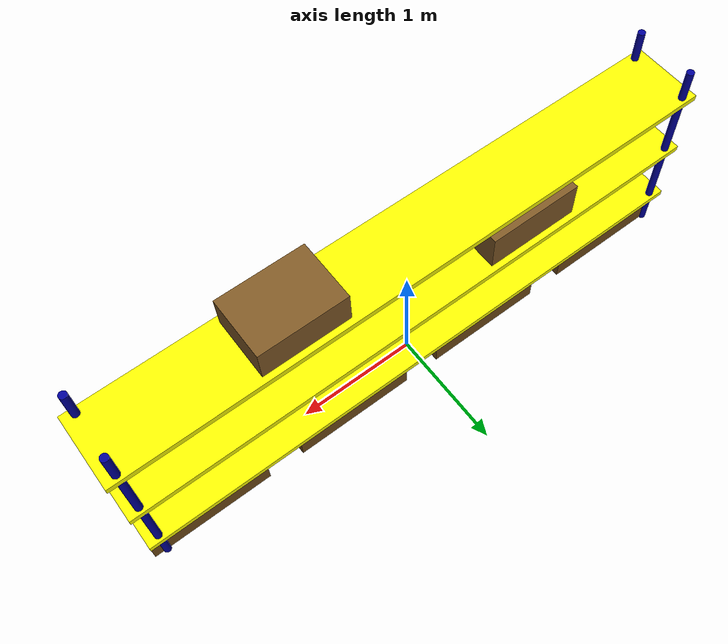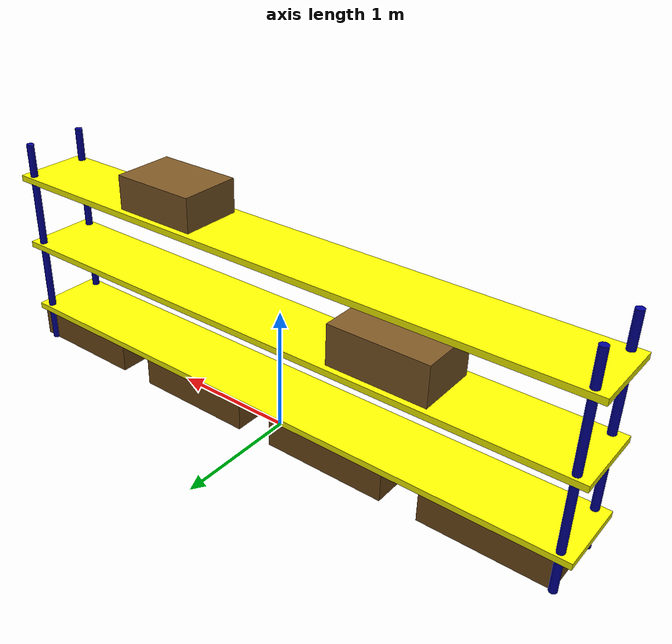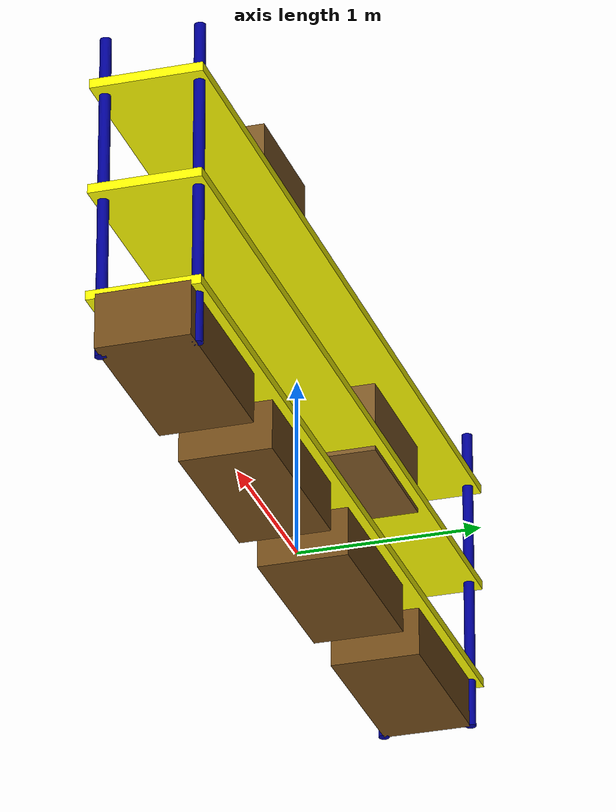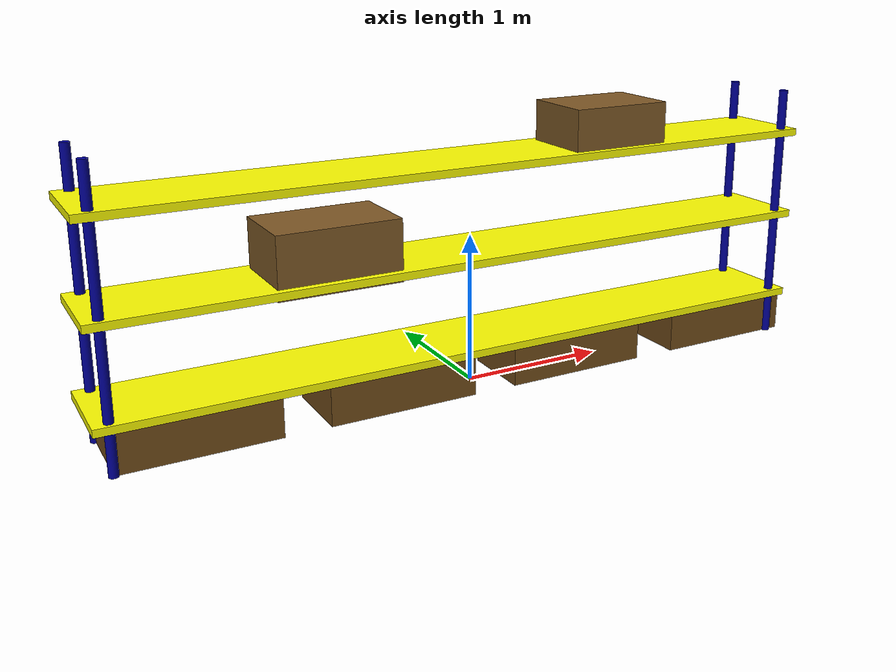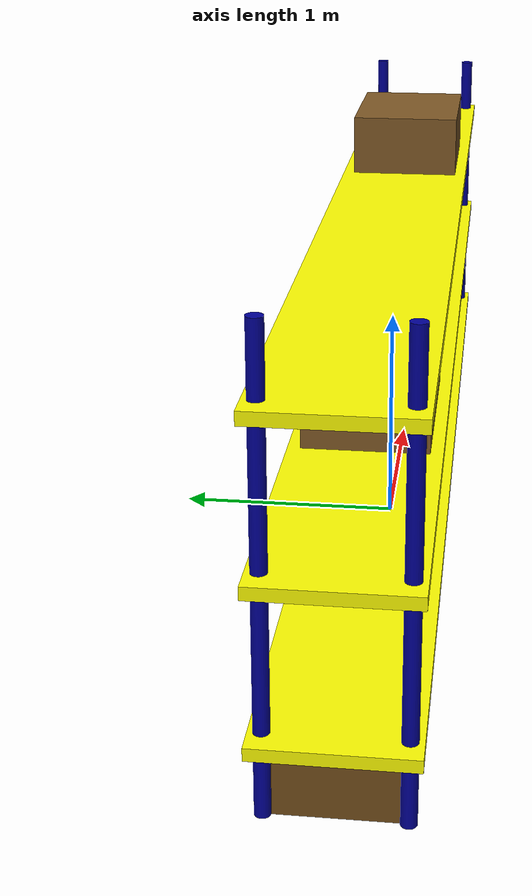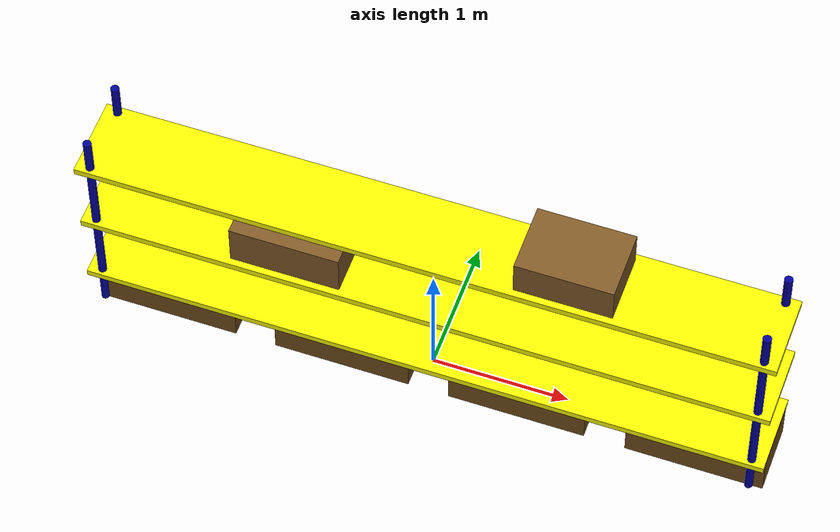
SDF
<?xml version="1.0" ?>
<sdf version="1.6">
  <model name="shelf_simple">
    <static>true</static>

    <!-- Collision box (keeps lidar and navigation aware of shelf boundaries) -->
    <link name="collision_box">
      <pose>0 0 0.9 0 0 0</pose>
      <collision name="collision">
        <geometry>
          <box><size>5 0.6 1.8</size></box>
        </geometry>
      </collision>
    </link>

    <!-- === FRAME POSTS (blue) === -->
    <link name="post_left_front">
      <pose>2.4 0.25 0.9 0 0 0</pose>
      <visual name="visual">
        <geometry><cylinder><radius>0.03</radius><length>1.8</length></cylinder></geometry>
        <material>
          <ambient>0.0 0.0 0.6 1</ambient>
          <diffuse>0.0 0.0 0.6 1</diffuse>
        </material>
      </visual>
    </link>

    <link name="post_left_back">
      <pose>2.4 -0.25 0.9 0 0 0</pose>
      <visual name="visual">
        <geometry><cylinder><radius>0.03</radius><length>1.8</length></cylinder></geometry>
        <material>
          <ambient>0.0 0.0 0.6 1</ambient>
          <diffuse>0.0 0.0 0.6 1</diffuse>
        </material>
      </visual>
    </link>

    <link name="post_right_front">
      <pose>-2.4 0.25 0.9 0 0 0</pose>
      <visual name="visual">
        <geometry><cylinder><radius>0.03</radius><length>1.8</length></cylinder></geometry>
        <material>
          <ambient>0.0 0.0 0.6 1</ambient>
          <diffuse>0.0 0.0 0.6 1</diffuse>
        </material>
      </visual>
    </link>

    <link name="post_right_back">
      <pose>-2.4 -0.25 0.9 0 0 0</pose>
      <visual name="visual">
        <geometry><cylinder><radius>0.03</radius><length>1.8</length></cylinder></geometry>
        <material>
          <ambient>0.0 0.0 0.6 1</ambient>
          <diffuse>0.0 0.0 0.6 1</diffuse>
        </material>
      </visual>
    </link>

    <!-- === YELLOW SHELVES === -->
    <link name="shelf_bottom">
      <pose>0 0 0.3 0 0 0</pose>
      <visual name="visual">
        <geometry><box><size>5 0.6 0.05</size></box></geometry>
        <material>
          <ambient>1.0 1.0 0.0 1</ambient>
          <diffuse>1.0 1.0 0.0 1</diffuse>
        </material>
      </visual>
    </link>

    <link name="shelf_middle">
      <pose>0 0 0.9 0 0 0</pose>
      <visual name="visual">
        <geometry><box><size>5 0.6 0.05</size></box></geometry>
        <material>
          <ambient>1.0 1.0 0.0 1</ambient>
          <diffuse>1.0 1.0 0.0 1</diffuse>
        </material>
      </visual>
    </link>

    <link name="shelf_top">
      <pose>0 0 1.5 0 0 0</pose>
      <visual name="visual">
        <geometry><box><size>5 0.6 0.05</size></box></geometry>
        <material>
          <ambient>1.0 1.0 0.0 1</ambient>
          <diffuse>1.0 1.0 0.0 1</diffuse>
        </material>
      </visual>
    </link>

    <!-- === BOXES ON GROUND LEVEL (block passage) === -->
    <link name="box_ground_1">
      <pose>2.0 0 0.15 0 0 0</pose>
      <visual name="visual">
        <geometry><box><size>1.0 0.5 0.3</size></box></geometry>
        <material>
          <ambient>0.45 0.3 0.1 1</ambient>
          <diffuse>0.45 0.3 0.1 1</diffuse>
        </material>
      </visual>
    </link>

    <link name="box_ground_2">
      <pose>0.7 0 0.15 0 0 0</pose>
      <visual name="visual">
        <geometry><box><size>1.0 0.5 0.3</size></box></geometry>
        <material>
          <ambient>0.45 0.3 0.1 1</ambient>
          <diffuse>0.45 0.3 0.1 1</diffuse>
        </material>
      </visual>
    </link>

    <link name="box_ground_3">
      <pose>-0.6 0 0.15 0 0 0</pose>
      <visual name="visual">
        <geometry><box><size>1.0 0.5 0.3</size></box></geometry>
        <material>
          <ambient>0.45 0.3 0.1 1</ambient>
          <diffuse>0.45 0.3 0.1 1</diffuse>
        </material>
      </visual>
    </link>

    <link name="box_ground_4">
      <pose>-1.9 0 0.15 0 0 0</pose>
      <visual name="visual">
        <geometry><box><size>1.0 0.5 0.3</size></box></geometry>
        <material>
          <ambient>0.45 0.3 0.1 1</ambient>
          <diffuse>0.45 0.3 0.1 1</diffuse>
        </material>
      </visual>
    </link>

    <!-- === ONE BOX ON EACH UPPER SHELF === -->
    <link name="box_middle">
      <pose>-1.0 0 1.05 0 0 0</pose>
      <visual name="visual">
        <geometry><box><size>0.8 0.5 0.4</size></box></geometry>
        <material>
          <ambient>0.5 0.35 0.15 1</ambient>
          <diffuse>0.5 0.35 0.15 1</diffuse>
        </material>
      </visual>
    </link>

    <link name="box_top">
      <pose>1.0 0 1.65 0 0 0</pose>
      <visual name="visual">
        <geometry><box><size>0.7 0.5 0.3</size></box></geometry>
        <material>
          <ambient>0.5 0.35 0.15 1</ambient>
          <diffuse>0.5 0.35 0.15 1</diffuse>
        </material>
      </visual>
    </link>

  </model>
</sdf>
